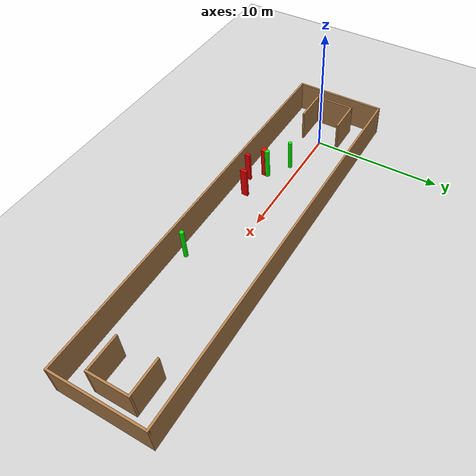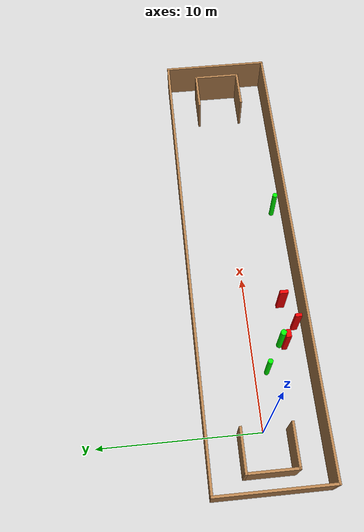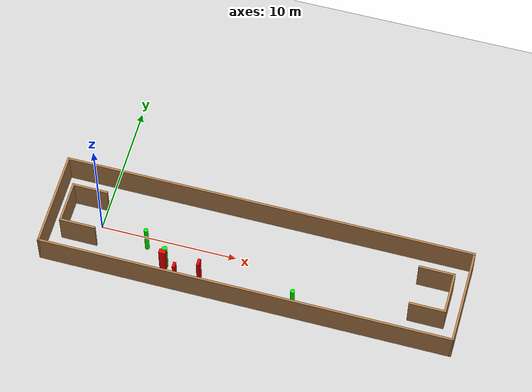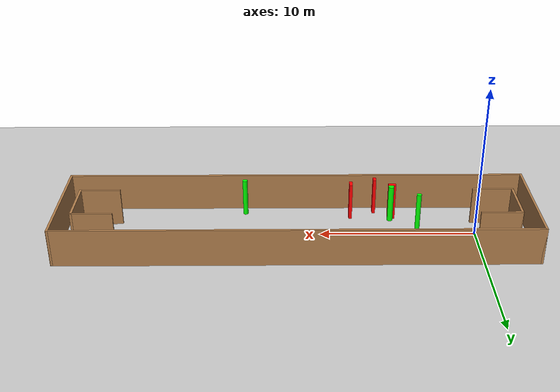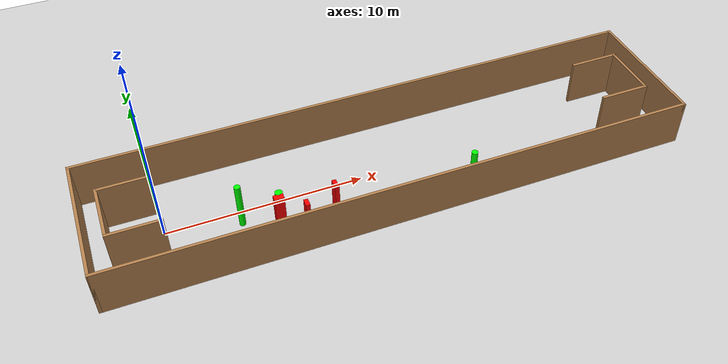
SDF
<sdf version="1.7">
 <world name="default">
  <light name="sun" type="directional">
   <pose>0 0 10 0 -0 0</pose>
   <diffuse>0.8 0.8 0.8 1</diffuse>
   <specular>0.2 0.2 0.2 1</specular>
   <attenuation>
    <range>1000</range>
    <constant>0.9</constant>
    <linear>0.01</linear>
    <quadratic>0.001</quadratic>
   </attenuation>
   <direction>-0.5 0.1 -0.9</direction>
   <spot><inner_angle>0</inner_angle><outer_angle>0</outer_angle><falloff>0</falloff></spot>
  </light>
  <model name="ground_plane">
   <static>1</static>
   <link name="link">
    <collision name="collision">
     <geometry><plane><normal>0 0 1</normal><size>100 100</size></plane></geometry>
     <surface>
      <contact><collide_bitmask>65535</collide_bitmask></contact>
      <friction><ode><mu>100</mu><mu2>50</mu2></ode></friction>
     </surface>
    </collision>
    <visual name="visual">
     <cast_shadows>0</cast_shadows>
     <geometry><plane><normal>0 0 1</normal><size>100 100</size></plane></geometry>
     <material>
      <script><uri>file://media/materials/scripts/gazebo.material</uri><name>Gazebo/Grey</name></script>
     </material>
    </visual>
   </link>
  </model>
  <gravity>0 0 -9.8</gravity>
  <magnetic_field>6e-06 2.3e-05 -4.2e-05</magnetic_field>
  <atmosphere type="adiabatic"/>
  <physics type="ode">
   <max_step_size>0.001</max_step_size>
   <real_time_factor>1</real_time_factor>
   <real_time_update_rate>1000</real_time_update_rate>
  </physics>
  <scene><ambient>0.4 0.4 0.4 1</ambient><background>0.7 0.7 0.7 1</background><shadows>1</shadows></scene>
  <spherical_coordinates>
   <surface_model>EARTH_WGS84</surface_model>
   <latitude_deg>0</latitude_deg>
   <longitude_deg>0</longitude_deg>
   <elevation>0</elevation>
   <heading_deg>0</heading_deg>
  </spherical_coordinates>
  <model name="my_base_walls">
   <link name="Wall_0">
    <collision name="Wall_0_Collision">
     <geometry><box><size>7.15 0.15 2.5</size></box></geometry>
     <pose>0 0 1.25 0 -0 0</pose>
    </collision>
    <visual name="Wall_0_Visual">
     <pose>0 0 1.25 0 -0 0</pose>
     <geometry><box><size>7.15 0.15 2.5</size></box></geometry>
     <material>
      <script><uri>file://media/materials/scripts/gazebo.material</uri><name>Gazebo/Wood</name></script>
      <ambient>1 1 1 1</ambient>
     </material>
     <meta><layer>0</layer></meta>
    </visual>
    <pose>-15 0 0 0 -0 1.5708</pose>
   </link>
   <link name="Wall_10">
    <collision name="Wall_10_Collision">
     <geometry><box><size>2.65 0.15 2.5</size></box></geometry>
     <pose>0 0 1.25 0 -0 0</pose>
    </collision>
    <visual name="Wall_10_Visual">
     <pose>0 0 1.25 0 -0 0</pose>
     <geometry><box><size>2.65 0.15 2.5</size></box></geometry>
     <material>
      <script><uri>file://media/materials/scripts/gazebo.material</uri><name>Gazebo/Wood</name></script>
      <ambient>1 1 1 1</ambient>
     </material>
     <meta><layer>0</layer></meta>
    </visual>
    <pose>-12.75 -1.5 0 0 -0 0</pose>
   </link>
   <link name="Wall_12">
    <collision name="Wall_12_Collision">
     <geometry><box><size>2.65 0.15 2.5</size></box></geometry>
     <pose>0 0 1.25 0 -0 0</pose>
    </collision>
    <visual name="Wall_12_Visual">
     <pose>0 0 1.25 0 -0 0</pose>
     <geometry><box><size>2.65 0.15 2.5</size></box></geometry>
     <material>
      <script><uri>file://media/materials/scripts/gazebo.material</uri><name>Gazebo/Wood</name></script>
      <ambient>1 1 1 1</ambient>
     </material>
     <meta><layer>0</layer></meta>
    </visual>
    <pose>-12.75 1.5 0 0 -0 0</pose>
   </link>
   <link name="Wall_14">
    <collision name="Wall_14_Collision">
     <geometry><box><size>3.15 0.15 2.5</size></box></geometry>
     <pose>0 0 1.25 0 -0 0</pose>
    </collision>
    <visual name="Wall_14_Visual">
     <pose>0 0 1.25 0 -0 0</pose>
     <geometry><box><size>3.15 0.15 2.5</size></box></geometry>
     <material>
      <script><uri>file://media/materials/scripts/gazebo.material</uri><name>Gazebo/Wood</name></script>
      <ambient>1 1 1 1</ambient>
     </material>
     <meta><layer>0</layer></meta>
    </visual>
    <pose>14 0 0 0 -0 -1.5708</pose>
   </link>
   <link name="Wall_15">
    <collision name="Wall_15_Collision">
     <geometry><box><size>2.65 0.15 2.5</size></box></geometry>
     <pose>0 0 1.25 0 -0 0</pose>
    </collision>
    <visual name="Wall_15_Visual">
     <pose>0 0 1.25 0 -0 0</pose>
     <geometry><box><size>2.65 0.15 2.5</size></box></geometry>
     <material>
      <script><uri>file://media/materials/scripts/gazebo.material</uri><name>Gazebo/Wood</name></script>
      <ambient>1 1 1 1</ambient>
     </material>
     <meta><layer>0</layer></meta>
    </visual>
    <pose>12.75 -1.5 0 0 -0 3.14159</pose>
   </link>
   <link name="Wall_17">
    <collision name="Wall_17_Collision">
     <geometry><box><size>2.65 0.15 2.5</size></box></geometry>
     <pose>0 0 1.25 0 -0 0</pose>
    </collision>
    <visual name="Wall_17_Visual">
     <pose>0 0 1.25 0 -0 0</pose>
     <geometry><box><size>2.65 0.15 2.5</size></box></geometry>
     <material>
      <script><uri>file://media/materials/scripts/gazebo.material</uri><name>Gazebo/Wood</name></script>
      <ambient>1 1 1 1</ambient>
     </material>
     <meta><layer>0</layer></meta>
    </visual>
    <pose>12.75 1.5 0 0 -0 3.14159</pose>
   </link>
   <link name="Wall_2">
    <collision name="Wall_2_Collision">
     <geometry><box><size>30.15 0.15 2.5</size></box></geometry>
     <pose>0 0 1.25 0 -0 0</pose>
    </collision>
    <visual name="Wall_2_Visual">
     <pose>0 0 1.25 0 -0 0</pose>
     <geometry><box><size>30.15 0.15 2.5</size></box></geometry>
     <material>
      <script><uri>file://media/materials/scripts/gazebo.material</uri><name>Gazebo/Wood</name></script>
      <ambient>1 1 1 1</ambient>
     </material>
     <meta><layer>0</layer></meta>
    </visual>
    <pose>-0 -3.5 0 0 -0 0</pose>
   </link>
   <link name="Wall_4">
    <collision name="Wall_4_Collision">
     <geometry><box><size>30.15 0.15 2.5</size></box></geometry>
     <pose>0 0 1.25 0 -0 0</pose>
    </collision>
    <visual name="Wall_4_Visual">
     <pose>0 0 1.25 0 -0 0</pose>
     <geometry><box><size>30.15 0.15 2.5</size></box></geometry>
     <material>
      <script><uri>file://media/materials/scripts/gazebo.material</uri><name>Gazebo/Wood</name></script>
      <ambient>1 1 1 1</ambient>
     </material>
     <meta><layer>0</layer></meta>
    </visual>
    <pose>-0 3.5 0 0 -0 0</pose>
   </link>
   <link name="Wall_6">
    <collision name="Wall_6_Collision">
     <geometry><box><size>7.15 0.15 2.5</size></box></geometry>
     <pose>0 0 1.25 0 -0 0</pose>
    </collision>
    <visual name="Wall_6_Visual">
     <pose>0 0 1.25 0 -0 0</pose>
     <geometry><box><size>7.15 0.15 2.5</size></box></geometry>
     <material>
      <script><uri>file://media/materials/scripts/gazebo.material</uri><name>Gazebo/Wood</name></script>
      <ambient>1 1 1 1</ambient>
     </material>
     <meta><layer>0</layer></meta>
    </visual>
    <pose>15 0 0 0 -0 -1.5708</pose>
   </link>
   <link name="Wall_9">
    <collision name="Wall_9_Collision">
     <geometry><box><size>3.15 0.15 2.5</size></box></geometry>
     <pose>0 0 1.25 0 -0 0</pose>
    </collision>
    <visual name="Wall_9_Visual">
     <pose>0 0 1.25 0 -0 0</pose>
     <geometry><box><size>3.15 0.15 2.5</size></box></geometry>
     <material>
      <script><uri>file://media/materials/scripts/gazebo.material</uri><name>Gazebo/Wood</name></script>
      <ambient>1 1 1 1</ambient>
     </material>
     <meta><layer>0</layer></meta>
    </visual>
    <pose>-14 0 0 0 -0 -1.5708</pose>
   </link>
   <static>1</static>
   <pose>11.5 0 0 0 -0 0</pose>
  </model>
  <model name="cylinder1">
   <static>1</static>
   <link name="link">
    <inertial>
     <mass>1</mass>
     <inertia><ixx>0.5</ixx><ixy>0</ixy><ixz>0</ixz><iyy>0.5</iyy><iyz>0</iyz><izz>1</izz></inertia>
    </inertial>
    <collision name="collision">
     <geometry><cylinder><radius>0.15712449381318042</radius><length>2.5</length></cylinder></geometry>
    </collision>
    <visual name="visual">
     <geometry><cylinder><radius>0.15712449381318042</radius><length>2.5</length></cylinder></geometry>
     <material>
      <ambient>0 1 0 1</ambient>
      <diffuse>0 1 0 1</diffuse>
      <specular>0.1 0.1 0.1 1</specular>
      <emissive>0 0 0 0</emissive>
     </material>
    </visual>
   </link>
   <pose>3.6249432928032785 -0.7638939070215676 1.25 0 0 0</pose>
  </model>
  <model name="cylinder2">
   <static>1</static>
   <link name="link">
    <inertial>
     <mass>1</mass>
     <inertia><ixx>0.5</ixx><ixy>0</ixy><ixz>0</ixz><iyy>0.5</iyy><iyz>0</iyz><izz>1</izz></inertia>
    </inertial>
    <collision name="collision">
     <geometry><cylinder><radius>0.1877699537311818</radius><length>2.5</length></cylinder></geometry>
    </collision>
    <visual name="visual">
     <geometry><cylinder><radius>0.1877699537311818</radius><length>2.5</length></cylinder></geometry>
     <material>
      <ambient>0 1 0 1</ambient>
      <diffuse>0 1 0 1</diffuse>
      <specular>0.1 0.1 0.1 1</specular>
      <emissive>0 0 0 0</emissive>
     </material>
    </visual>
   </link>
   <pose>5.311742978557033 -1.8244094969874083 1.25 0 0 0</pose>
  </model>
  <model name="cylinder3">
   <static>1</static>
   <link name="link">
    <inertial>
     <mass>1</mass>
     <inertia><ixx>0.5</ixx><ixy>0</ixy><ixz>0</ixz><iyy>0.5</iyy><iyz>0</iyz><izz>1</izz></inertia>
    </inertial>
    <collision name="collision">
     <geometry><cylinder><radius>0.16113952679983756</radius><length>2.5</length></cylinder></geometry>
    </collision>
    <visual name="visual">
     <geometry><cylinder><radius>0.16113952679983756</radius><length>2.5</length></cylinder></geometry>
     <material>
      <ambient>0 1 0 1</ambient>
      <diffuse>0 1 0 1</diffuse>
      <specular>0.1 0.1 0.1 1</specular>
      <emissive>0 0 0 0</emissive>
     </material>
    </visual>
   </link>
   <pose>14.899261803019137 -2.756121416801714 1.25 0 0 0</pose>
  </model>
  <model name="box1">
   <static>1</static>
   <link name="link">
    <inertial>
     <mass>1</mass>
     <inertia><ixx>0.083</ixx><ixy>0</ixy><ixz>0</ixz><iyy>0.083</iyy><iyz>0</iyz><izz>0.083</izz></inertia>
    </inertial>
    <collision name="collision">
     <geometry><box><size>0.4847306098248637 0.3230944690006765 2.5</size></box></geometry>
    </collision>
    <visual name="visual">
     <geometry><box><size>0.4847306098248637 0.3230944690006765 2.5</size></box></geometry>
     <material>
      <ambient>1 0 0 1</ambient>
      <diffuse>1 0 0 1</diffuse>
      <specular>0.1 0.1 0.1 1</specular>
      <emissive>0 0 0 0</emissive>
     </material>
    </visual>
    <sensor name="my_contact" type="contact">
     <contact><collision>box_collision</collision><topic>__default_topic__</topic></contact>
    </sensor>
   </link>
   <pose>5.233879779745294 -2.1053688834247435 1.25 0 0 0</pose>
  </model>
  <model name="box2">
   <static>1</static>
   <link name="link">
    <inertial>
     <mass>1</mass>
     <inertia><ixx>0.083</ixx><ixy>0</ixy><ixz>0</ixz><iyy>0.083</iyy><iyz>0</iyz><izz>0.083</izz></inertia>
    </inertial>
    <collision name="collision">
     <geometry><box><size>0.20749324713346162 0.40045116500582795 2.5</size></box></geometry>
    </collision>
    <visual name="visual">
     <geometry><box><size>0.20749324713346162 0.40045116500582795 2.5</size></box></geometry>
     <material>
      <ambient>1 0 0 1</ambient>
      <diffuse>1 0 0 1</diffuse>
      <specular>0.1 0.1 0.1 1</specular>
      <emissive>0 0 0 0</emissive>
     </material>
    </visual>
    <sensor name="my_contact" type="contact">
     <contact><collision>box_collision</collision><topic>__default_topic__</topic></contact>
    </sensor>
   </link>
   <pose>6.328657053365713 -2.9054635004438887 1.25 0 0 0</pose>
  </model>
  <model name="box3">
   <static>1</static>
   <link name="link">
    <inertial>
     <mass>1</mass>
     <inertia><ixx>0.083</ixx><ixy>0</ixy><ixz>0</ixz><iyy>0.083</iyy><iyz>0</iyz><izz>0.083</izz></inertia>
    </inertial>
    <collision name="collision">
     <geometry><box><size>0.20972351130261974 0.5253648815378051 2.5</size></box></geometry>
    </collision>
    <visual name="visual">
     <geometry><box><size>0.20972351130261974 0.5253648815378051 2.5</size></box></geometry>
     <material>
      <ambient>1 0 0 1</ambient>
      <diffuse>1 0 0 1</diffuse>
      <specular>0.1 0.1 0.1 1</specular>
      <emissive>0 0 0 0</emissive>
     </material>
    </visual>
    <sensor name="my_contact" type="contact">
     <contact><collision>box_collision</collision><topic>__default_topic__</topic></contact>
    </sensor>
   </link>
   <pose>7.930032420686263 -2.2610570985780365 1.25 0 0 0</pose>
  </model>
 </world>
</sdf>
